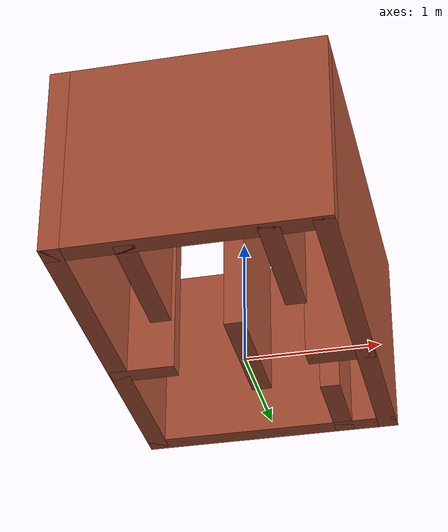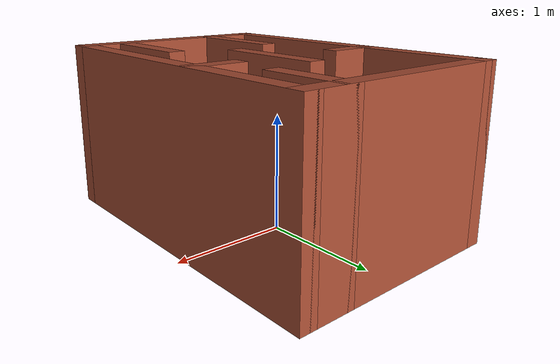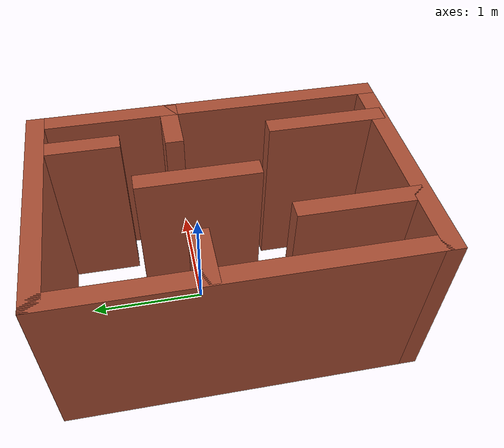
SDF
<?xml version="1.0" ?>
<sdf version='1.7'>
    <model name='clothy_world'>
      <pose>-0.045 -0.215 0 0 -0 0</pose>
      <link name='Wall_0'>
        <collision name='Wall_0_Collision'>
          <geometry>
            <box>
              <size>2 0.15 1.5</size>
            </box>
          </geometry>
          <pose>0 0 0.75 0 -0 0</pose>
          <max_contacts>10</max_contacts>
          <surface>
            <contact>
              <ode/>
            </contact>
            <bounce/>
            <friction>
              <torsional>
                <ode/>
              </torsional>
              <ode/>
            </friction>
          </surface>
        </collision>
        <visual name='Wall_0_Visual'>
          <pose>0 0 0.75 0 -0 0</pose>
          <geometry>
            <box>
              <size>2 0.15 1.5</size>
            </box>
          </geometry>
          <material>
            <script>
              <uri>file://media/materials/scripts/gazebo.material</uri>
              <name>Gazebo/Bricks</name>
            </script>
            <ambient>1 1 1 1</ambient>
          </material>
          <meta>
            <layer>0</layer>
          </meta>
        </visual>
        <pose>0 1.425 0 0 -0 0</pose>
        <self_collide>0</self_collide>
        <enable_wind>0</enable_wind>
        <kinematic>0</kinematic>
      </link>
      <link name='Wall_1'>
        <collision name='Wall_1_Collision'>
          <geometry>
            <box>
              <size>3 0.15 1.5</size>
            </box>
          </geometry>
          <pose>0 0 0.75 0 -0 0</pose>
          <max_contacts>10</max_contacts>
          <surface>
            <contact>
              <ode/>
            </contact>
            <bounce/>
            <friction>
              <torsional>
                <ode/>
              </torsional>
              <ode/>
            </friction>
          </surface>
        </collision>
        <visual name='Wall_1_Visual'>
          <pose>0 0 0.75 0 -0 0</pose>
          <geometry>
            <box>
              <size>3 0.15 1.5</size>
            </box>
          </geometry>
          <material>
            <script>
              <uri>file://media/materials/scripts/gazebo.material</uri>
              <name>Gazebo/Bricks</name>
            </script>
            <ambient>1 1 1 1</ambient>
          </material>
          <meta>
            <layer>0</layer>
          </meta>
        </visual>
        <pose>0.925 0 0 0 -0 -1.5708</pose>
        <self_collide>0</self_collide>
        <enable_wind>0</enable_wind>
        <kinematic>0</kinematic>
      </link>
      <link name='Wall_11'>
        <collision name='Wall_11_Collision'>
          <geometry>
            <box>
              <size>1 0.15 1.5</size>
            </box>
          </geometry>
          <pose>0 0 0.75 0 -0 0</pose>
          <max_contacts>10</max_contacts>
          <surface>
            <contact>
              <ode/>
            </contact>
            <bounce/>
            <friction>
              <torsional>
                <ode/>
              </torsional>
              <ode/>
            </friction>
          </surface>
        </collision>
        <visual name='Wall_11_Visual'>
          <pose>0 0 0.75 0 -0 0</pose>
          <geometry>
            <box>
              <size>1 0.15 1.5</size>
            </box>
          </geometry>
          <material>
            <script>
              <uri>file://media/materials/scripts/gazebo.material</uri>
              <name>Gazebo/Bricks</name>
            </script>
            <ambient>1 1 1 1</ambient>
          </material>
          <meta>
            <layer>0</layer>
          </meta>
        </visual>
        <pose>-0.425 -0.94 0 0 -0 -1.5708</pose>
        <self_collide>0</self_collide>
        <enable_wind>0</enable_wind>
        <kinematic>0</kinematic>
      </link>
      <link name='Wall_15'>
        <collision name='Wall_15_Collision'>
          <geometry>
            <box>
              <size>0.5 0.15 1.5</size>
            </box>
          </geometry>
          <pose>0 0 0.75 0 -0 0</pose>
          <max_contacts>10</max_contacts>
          <surface>
            <contact>
              <ode/>
            </contact>
            <bounce/>
            <friction>
              <torsional>
                <ode/>
              </torsional>
              <ode/>
            </friction>
          </surface>
        </collision>
        <visual name='Wall_15_Visual'>
          <pose>0 0 0.75 0 -0 0</pose>
          <geometry>
            <box>
              <size>0.5 0.15 1.5</size>
            </box>
          </geometry>
          <material>
            <script>
              <uri>file://media/materials/scripts/gazebo.material</uri>
              <name>Gazebo/Bricks</name>
            </script>
            <ambient>1 1 1 1</ambient>
          </material>
          <meta>
            <layer>0</layer>
          </meta>
        </visual>
        <pose>-0.74 0.275 0 0 -0 0</pose>
        <self_collide>0</self_collide>
        <enable_wind>0</enable_wind>
        <kinematic>0</kinematic>
      </link>
      <link name='Wall_17'>
        <collision name='Wall_17_Collision'>
          <geometry>
            <box>
              <size>0.5 0.15 1.5</size>
            </box>
          </geometry>
          <pose>0 0 0.75 0 -0 0</pose>
          <max_contacts>10</max_contacts>
          <surface>
            <contact>
              <ode/>
            </contact>
            <bounce/>
            <friction>
              <torsional>
                <ode/>
              </torsional>
              <ode/>
            </friction>
          </surface>
        </collision>
        <visual name='Wall_17_Visual'>
          <pose>0 0 0.75 0 -0 0</pose>
          <geometry>
            <box>
              <size>0.5 0.15 1.5</size>
            </box>
          </geometry>
          <material>
            <script>
              <uri>file://media/materials/scripts/gazebo.material</uri>
              <name>Gazebo/Bricks</name>
            </script>
            <ambient>1 1 1 1</ambient>
          </material>
          <meta>
            <layer>0</layer>
          </meta>
        </visual>
        <pose>0.74 0.315 0 0 -0 3.14159</pose>
        <self_collide>0</self_collide>
        <enable_wind>0</enable_wind>
        <kinematic>0</kinematic>
      </link>
      <link name='Wall_19'>
        <collision name='Wall_19_Collision'>
          <geometry>
            <box>
              <size>1 0.15 1.5</size>
            </box>
          </geometry>
          <pose>0 0 0.75 0 -0 0</pose>
          <max_contacts>10</max_contacts>
          <surface>
            <contact>
              <ode/>
            </contact>
            <bounce/>
            <friction>
              <torsional>
                <ode/>
              </torsional>
              <ode/>
            </friction>
          </surface>
        </collision>
        <visual name='Wall_19_Visual'>
          <pose>0 0 0.75 0 -0 0</pose>
          <geometry>
            <box>
              <size>1 0.15 1.5</size>
            </box>
          </geometry>
          <material>
            <script>
              <uri>file://media/materials/scripts/gazebo.material</uri>
              <name>Gazebo/Bricks</name>
            </script>
            <ambient>1 1 1 1</ambient>
          </material>
          <meta>
            <layer>0</layer>
          </meta>
        </visual>
        <pose>0.075 0.19 0 0 -0 -1.5708</pose>
        <self_collide>0</self_collide>
        <enable_wind>0</enable_wind>
        <kinematic>0</kinematic>
      </link>
      <link name='Wall_2'>
        <collision name='Wall_2_Collision'>
          <geometry>
            <box>
              <size>2 0.15 1.5</size>
            </box>
          </geometry>
          <pose>0 0 0.75 0 -0 0</pose>
          <max_contacts>10</max_contacts>
          <surface>
            <contact>
              <ode/>
            </contact>
            <bounce/>
            <friction>
              <torsional>
                <ode/>
              </torsional>
              <ode/>
            </friction>
          </surface>
        </collision>
        <visual name='Wall_2_Visual'>
          <pose>0 0 0.75 0 -0 0</pose>
          <geometry>
            <box>
              <size>2 0.15 1.5</size>
            </box>
          </geometry>
          <material>
            <script>
              <uri>file://media/materials/scripts/gazebo.material</uri>
              <name>Gazebo/Bricks</name>
            </script>
            <ambient>1 1 1 1</ambient>
          </material>
          <meta>
            <layer>0</layer>
          </meta>
        </visual>
        <pose>0 -1.425 0 0 -0 3.14159</pose>
        <self_collide>0</self_collide>
        <enable_wind>0</enable_wind>
        <kinematic>0</kinematic>
      </link>
      <link name='Wall_3'>
        <collision name='Wall_3_Collision'>
          <geometry>
            <box>
              <size>3 0.15 1.5</size>
            </box>
          </geometry>
          <pose>0 0 0.75 0 -0 0</pose>
          <max_contacts>10</max_contacts>
          <surface>
            <contact>
              <ode/>
            </contact>
            <bounce/>
            <friction>
              <torsional>
                <ode/>
              </torsional>
              <ode/>
            </friction>
          </surface>
        </collision>
        <visual name='Wall_3_Visual'>
          <pose>0 0 0.75 0 -0 0</pose>
          <geometry>
            <box>
              <size>3 0.15 1.5</size>
            </box>
          </geometry>
          <material>
            <script>
              <uri>file://media/materials/scripts/gazebo.material</uri>
              <name>Gazebo/Bricks</name>
            </script>
            <ambient>1 1 1 1</ambient>
          </material>
          <meta>
            <layer>0</layer>
          </meta>
        </visual>
        <pose>-0.925 0 0 0 -0 1.5708</pose>
        <self_collide>0</self_collide>
        <enable_wind>0</enable_wind>
        <kinematic>0</kinematic>
      </link>
      <link name='Wall_5'>
        <collision name='Wall_5_Collision'>
          <geometry>
            <box>
              <size>0.75 0.15 1.5</size>
            </box>
          </geometry>
          <pose>0 0 0.75 0 -0 0</pose>
          <max_contacts>10</max_contacts>
          <surface>
            <contact>
              <ode/>
            </contact>
            <bounce/>
            <friction>
              <torsional>
                <ode/>
              </torsional>
              <ode/>
            </friction>
          </surface>
        </collision>
        <visual name='Wall_5_Visual'>
          <pose>0 0 0.75 0 -0 0</pose>
          <geometry>
            <box>
              <size>0.75 0.15 1.5</size>
            </box>
          </geometry>
          <material>
            <script>
              <uri>file://media/materials/scripts/gazebo.material</uri>
              <name>Gazebo/Bricks</name>
            </script>
            <ambient>1 1 1 1</ambient>
          </material>
          <meta>
            <layer>0</layer>
          </meta>
        </visual>
        <pose>0.585 1.125 0 0 -0 -1.5708</pose>
        <self_collide>0</self_collide>
        <enable_wind>0</enable_wind>
        <kinematic>0</kinematic>
      </link>
      <link name='Wall_9'>
        <collision name='Wall_9_Collision'>
          <geometry>
            <box>
              <size>1 0.15 1.5</size>
            </box>
          </geometry>
          <pose>0 0 0.75 0 -0 0</pose>
          <max_contacts>10</max_contacts>
          <surface>
            <contact>
              <ode/>
            </contact>
            <bounce/>
            <friction>
              <torsional>
                <ode/>
              </torsional>
              <ode/>
            </friction>
          </surface>
        </collision>
        <visual name='Wall_9_Visual'>
          <pose>0 0 0.75 0 -0 0</pose>
          <geometry>
            <box>
              <size>1 0.15 1.5</size>
            </box>
          </geometry>
          <material>
            <script>
              <uri>file://media/materials/scripts/gazebo.material</uri>
              <name>Gazebo/Bricks</name>
            </script>
            <ambient>1 1 1 1</ambient>
          </material>
          <meta>
            <layer>0</layer>
          </meta>
        </visual>
        <pose>0.555 -0.97 0 0 -0 -1.5708</pose>
        <self_collide>0</self_collide>
        <enable_wind>0</enable_wind>
        <kinematic>0</kinematic>
      </link>
      <static>1</static>
    </model>
</sdf>
